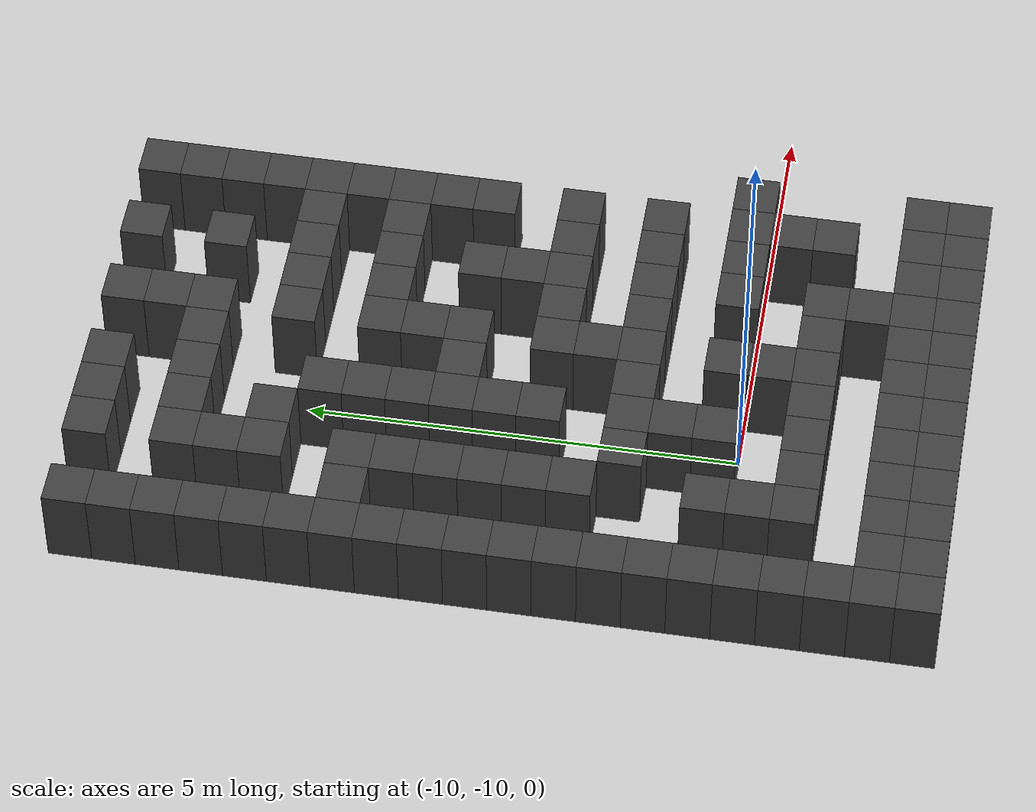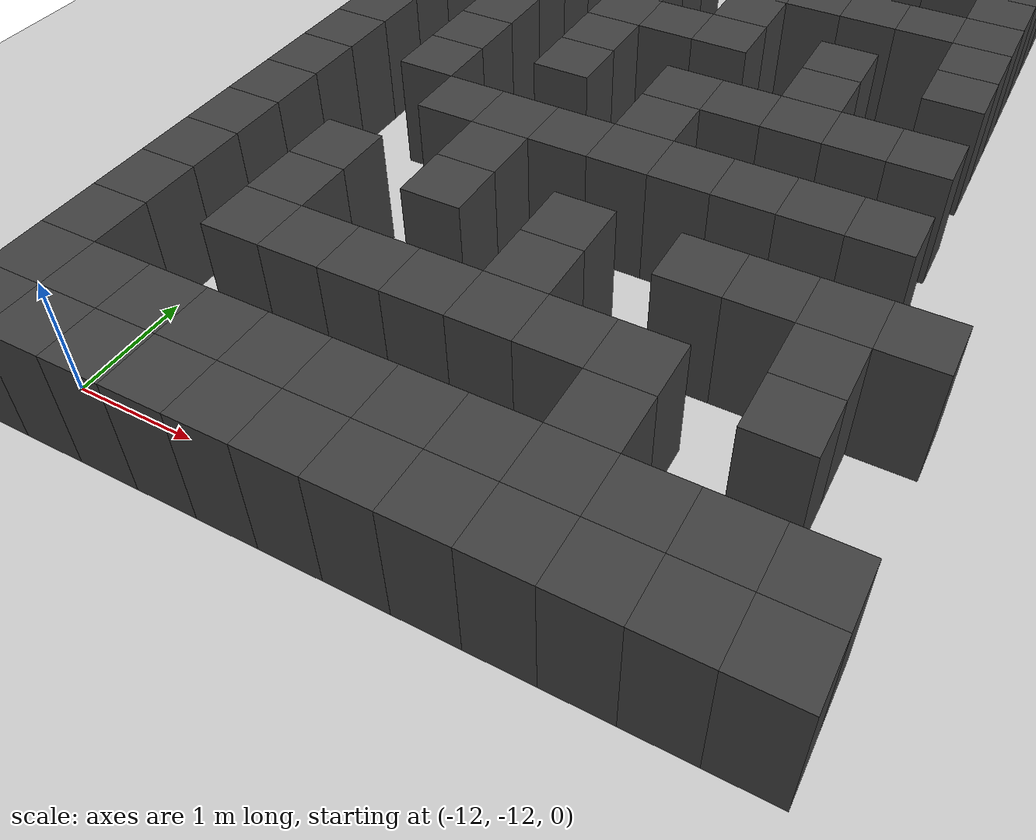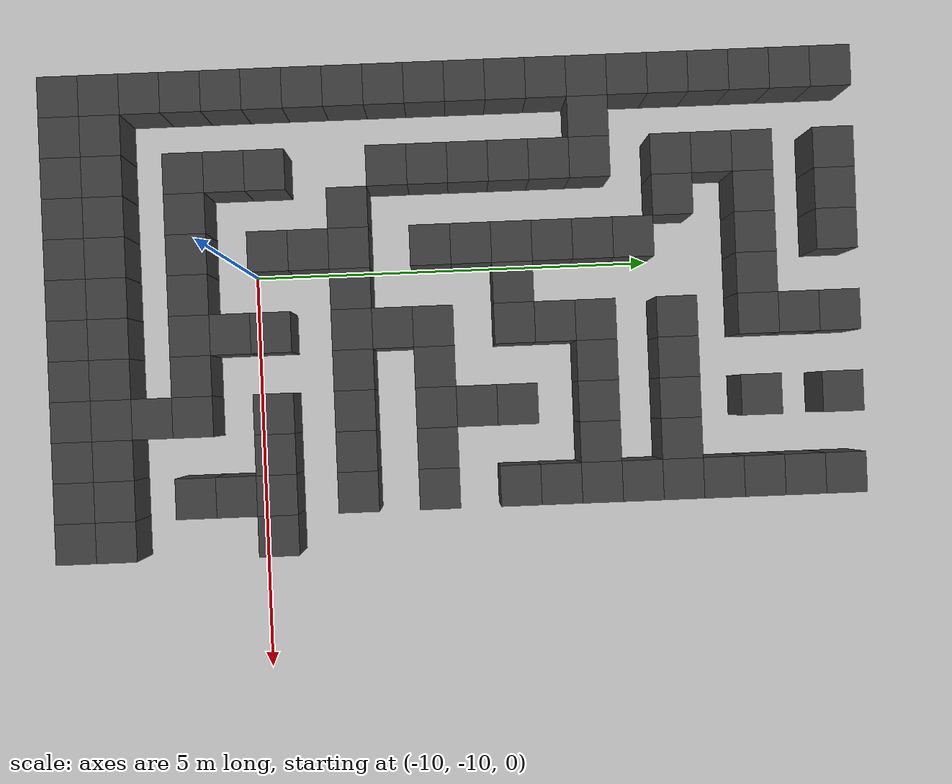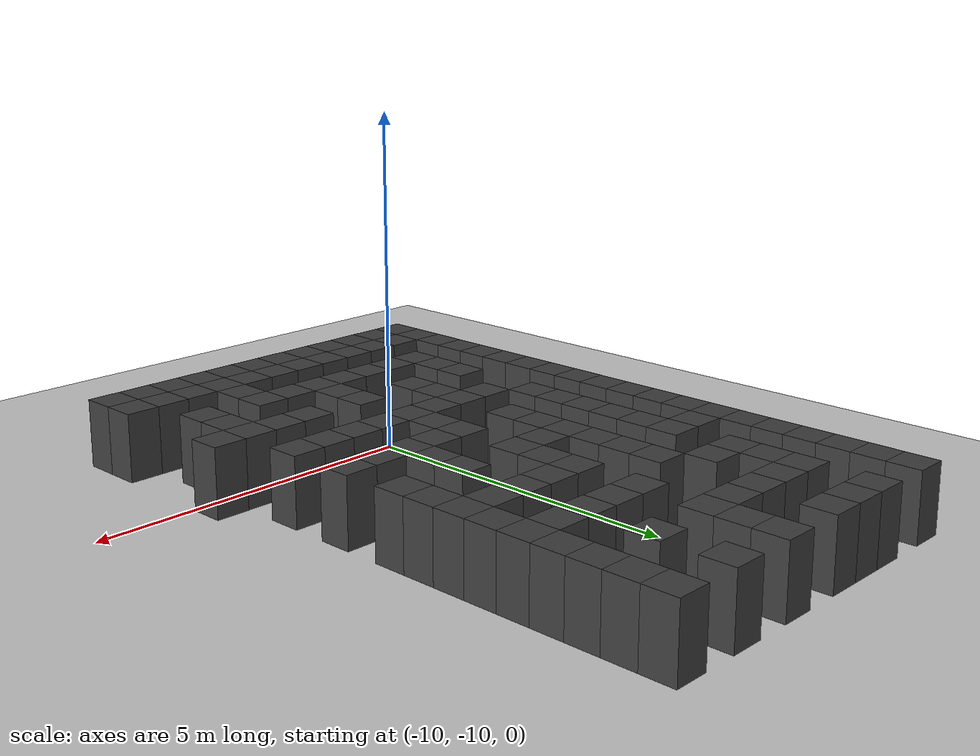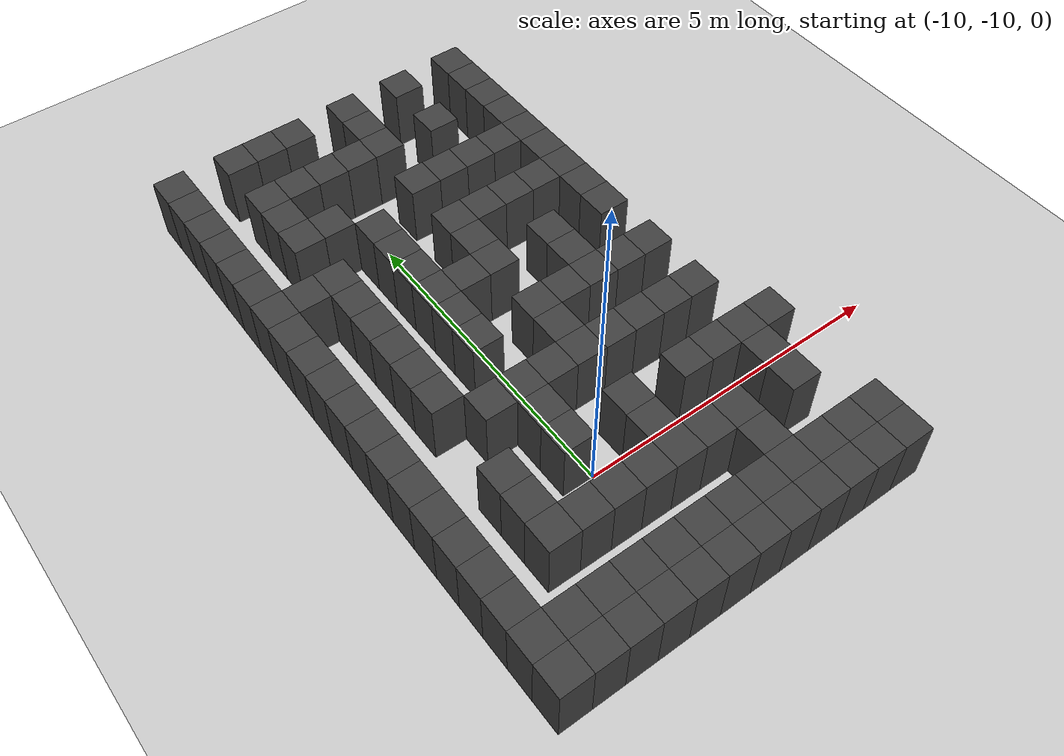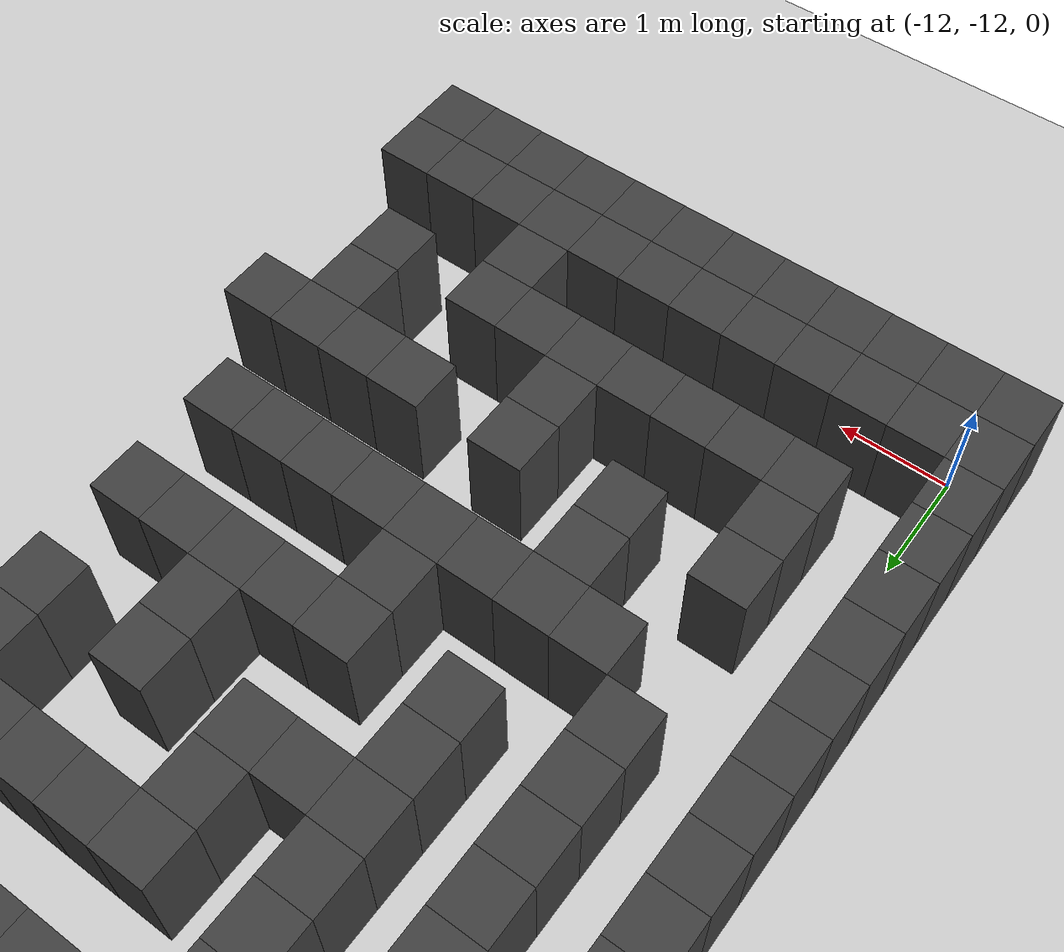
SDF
<sdf version="1.7">
 <world name="map_17508">
  <model name="ground_plane">
   <static>true</static>
   <link name="link">
    <collision name="collision">
     <geometry><plane><normal>0 0 1</normal><size>200 200</size></plane></geometry>
    </collision>
    <visual name="visual">
     <geometry><plane><normal>0 0 1</normal><size>200 200</size></plane></geometry>
     <material><ambient>0.8 0.8 0.8 1</ambient><diffuse>0.8 0.8 0.8 1</diffuse></material>
    </visual>
   </link>
  </model>
  <model name="maze_environment">
   <static>true</static>
   <link name="wall_737">
    <pose>-12.250 -2.750 0.500 0 0 0</pose>
    <collision name="col"><geometry><box><size>0.5 0.5 1.0</size></box></geometry></collision>
    <visual name="vis">
     <geometry><box><size>0.5 0.5 1.0</size></box></geometry>
     <material><ambient>0.15 0.15 0.15 1</ambient><diffuse>0.25 0.25 0.25 1</diffuse></material>
    </visual>
   </link>
   <link name="wall_738">
    <pose>-11.250 -2.750 0.500 0 0 0</pose>
    <collision name="col"><geometry><box><size>0.5 0.5 1.0</size></box></geometry></collision>
    <visual name="vis">
     <geometry><box><size>0.5 0.5 1.0</size></box></geometry>
     <material><ambient>0.15 0.15 0.15 1</ambient><diffuse>0.25 0.25 0.25 1</diffuse></material>
    </visual>
   </link>
   <link name="wall_739">
    <pose>-10.750 -2.750 0.500 0 0 0</pose>
    <collision name="col"><geometry><box><size>0.5 0.5 1.0</size></box></geometry></collision>
    <visual name="vis">
     <geometry><box><size>0.5 0.5 1.0</size></box></geometry>
     <material><ambient>0.15 0.15 0.15 1</ambient><diffuse>0.25 0.25 0.25 1</diffuse></material>
    </visual>
   </link>
   <link name="wall_740">
    <pose>-10.250 -2.750 0.500 0 0 0</pose>
    <collision name="col"><geometry><box><size>0.5 0.5 1.0</size></box></geometry></collision>
    <visual name="vis">
     <geometry><box><size>0.5 0.5 1.0</size></box></geometry>
     <material><ambient>0.15 0.15 0.15 1</ambient><diffuse>0.25 0.25 0.25 1</diffuse></material>
    </visual>
   </link>
   <link name="wall_741">
    <pose>-9.250 -2.750 0.500 0 0 0</pose>
    <collision name="col"><geometry><box><size>0.5 0.5 1.0</size></box></geometry></collision>
    <visual name="vis">
     <geometry><box><size>0.5 0.5 1.0</size></box></geometry>
     <material><ambient>0.15 0.15 0.15 1</ambient><diffuse>0.25 0.25 0.25 1</diffuse></material>
    </visual>
   </link>
   <link name="wall_742">
    <pose>-8.250 -2.750 0.500 0 0 0</pose>
    <collision name="col"><geometry><box><size>0.5 0.5 1.0</size></box></geometry></collision>
    <visual name="vis">
     <geometry><box><size>0.5 0.5 1.0</size></box></geometry>
     <material><ambient>0.15 0.15 0.15 1</ambient><diffuse>0.25 0.25 0.25 1</diffuse></material>
    </visual>
   </link>
   <link name="wall_743">
    <pose>-7.250 -2.750 0.500 0 0 0</pose>
    <collision name="col"><geometry><box><size>0.5 0.5 1.0</size></box></geometry></collision>
    <visual name="vis">
     <geometry><box><size>0.5 0.5 1.0</size></box></geometry>
     <material><ambient>0.15 0.15 0.15 1</ambient><diffuse>0.25 0.25 0.25 1</diffuse></material>
    </visual>
   </link>
   <link name="wall_773">
    <pose>-12.250 -3.250 0.500 0 0 0</pose>
    <collision name="col"><geometry><box><size>0.5 0.5 1.0</size></box></geometry></collision>
    <visual name="vis">
     <geometry><box><size>0.5 0.5 1.0</size></box></geometry>
     <material><ambient>0.15 0.15 0.15 1</ambient><diffuse>0.25 0.25 0.25 1</diffuse></material>
    </visual>
   </link>
   <link name="wall_774">
    <pose>-9.250 -3.250 0.500 0 0 0</pose>
    <collision name="col"><geometry><box><size>0.5 0.5 1.0</size></box></geometry></collision>
    <visual name="vis">
     <geometry><box><size>0.5 0.5 1.0</size></box></geometry>
     <material><ambient>0.15 0.15 0.15 1</ambient><diffuse>0.25 0.25 0.25 1</diffuse></material>
    </visual>
   </link>
   <link name="wall_775">
    <pose>-7.250 -3.250 0.500 0 0 0</pose>
    <collision name="col"><geometry><box><size>0.5 0.5 1.0</size></box></geometry></collision>
    <visual name="vis">
     <geometry><box><size>0.5 0.5 1.0</size></box></geometry>
     <material><ambient>0.15 0.15 0.15 1</ambient><diffuse>0.25 0.25 0.25 1</diffuse></material>
    </visual>
   </link>
   <link name="wall_785">
    <pose>-12.250 -3.750 0.500 0 0 0</pose>
    <collision name="col"><geometry><box><size>0.5 0.5 1.0</size></box></geometry></collision>
    <visual name="vis">
     <geometry><box><size>0.5 0.5 1.0</size></box></geometry>
     <material><ambient>0.15 0.15 0.15 1</ambient><diffuse>0.25 0.25 0.25 1</diffuse></material>
    </visual>
   </link>
   <link name="wall_786">
    <pose>-11.250 -3.750 0.500 0 0 0</pose>
    <collision name="col"><geometry><box><size>0.5 0.5 1.0</size></box></geometry></collision>
    <visual name="vis">
     <geometry><box><size>0.5 0.5 1.0</size></box></geometry>
     <material><ambient>0.15 0.15 0.15 1</ambient><diffuse>0.25 0.25 0.25 1</diffuse></material>
    </visual>
   </link>
   <link name="wall_787">
    <pose>-10.750 -3.750 0.500 0 0 0</pose>
    <collision name="col"><geometry><box><size>0.5 0.5 1.0</size></box></geometry></collision>
    <visual name="vis">
     <geometry><box><size>0.5 0.5 1.0</size></box></geometry>
     <material><ambient>0.15 0.15 0.15 1</ambient><diffuse>0.25 0.25 0.25 1</diffuse></material>
    </visual>
   </link>
   <link name="wall_788">
    <pose>-10.250 -3.750 0.500 0 0 0</pose>
    <collision name="col"><geometry><box><size>0.5 0.5 1.0</size></box></geometry></collision>
    <visual name="vis">
     <geometry><box><size>0.5 0.5 1.0</size></box></geometry>
     <material><ambient>0.15 0.15 0.15 1</ambient><diffuse>0.25 0.25 0.25 1</diffuse></material>
    </visual>
   </link>
   <link name="wall_789">
    <pose>-9.750 -3.750 0.500 0 0 0</pose>
    <collision name="col"><geometry><box><size>0.5 0.5 1.0</size></box></geometry></collision>
    <visual name="vis">
     <geometry><box><size>0.5 0.5 1.0</size></box></geometry>
     <material><ambient>0.15 0.15 0.15 1</ambient><diffuse>0.25 0.25 0.25 1</diffuse></material>
    </visual>
   </link>
   <link name="wall_790">
    <pose>-9.250 -3.750 0.500 0 0 0</pose>
    <collision name="col"><geometry><box><size>0.5 0.5 1.0</size></box></geometry></collision>
    <visual name="vis">
     <geometry><box><size>0.5 0.5 1.0</size></box></geometry>
     <material><ambient>0.15 0.15 0.15 1</ambient><diffuse>0.25 0.25 0.25 1</diffuse></material>
    </visual>
   </link>
   <link name="wall_791">
    <pose>-8.250 -3.750 0.500 0 0 0</pose>
    <collision name="col"><geometry><box><size>0.5 0.5 1.0</size></box></geometry></collision>
    <visual name="vis">
     <geometry><box><size>0.5 0.5 1.0</size></box></geometry>
     <material><ambient>0.15 0.15 0.15 1</ambient><diffuse>0.25 0.25 0.25 1</diffuse></material>
    </visual>
   </link>
   <link name="wall_792">
    <pose>-7.250 -3.750 0.500 0 0 0</pose>
    <collision name="col"><geometry><box><size>0.5 0.5 1.0</size></box></geometry></collision>
    <visual name="vis">
     <geometry><box><size>0.5 0.5 1.0</size></box></geometry>
     <material><ambient>0.15 0.15 0.15 1</ambient><diffuse>0.25 0.25 0.25 1</diffuse></material>
    </visual>
   </link>
   <link name="wall_817">
    <pose>-12.250 -4.250 0.500 0 0 0</pose>
    <collision name="col"><geometry><box><size>0.5 0.5 1.0</size></box></geometry></collision>
    <visual name="vis">
     <geometry><box><size>0.5 0.5 1.0</size></box></geometry>
     <material><ambient>0.15 0.15 0.15 1</ambient><diffuse>0.25 0.25 0.25 1</diffuse></material>
    </visual>
   </link>
   <link name="wall_818">
    <pose>-11.250 -4.250 0.500 0 0 0</pose>
    <collision name="col"><geometry><box><size>0.5 0.5 1.0</size></box></geometry></collision>
    <visual name="vis">
     <geometry><box><size>0.5 0.5 1.0</size></box></geometry>
     <material><ambient>0.15 0.15 0.15 1</ambient><diffuse>0.25 0.25 0.25 1</diffuse></material>
    </visual>
   </link>
   <link name="wall_819">
    <pose>-7.250 -4.250 0.500 0 0 0</pose>
    <collision name="col"><geometry><box><size>0.5 0.5 1.0</size></box></geometry></collision>
    <visual name="vis">
     <geometry><box><size>0.5 0.5 1.0</size></box></geometry>
     <material><ambient>0.15 0.15 0.15 1</ambient><diffuse>0.25 0.25 0.25 1</diffuse></material>
    </visual>
   </link>
   <link name="wall_833">
    <pose>-12.250 -4.750 0.500 0 0 0</pose>
    <collision name="col"><geometry><box><size>0.5 0.5 1.0</size></box></geometry></collision>
    <visual name="vis">
     <geometry><box><size>0.5 0.5 1.0</size></box></geometry>
     <material><ambient>0.15 0.15 0.15 1</ambient><diffuse>0.25 0.25 0.25 1</diffuse></material>
    </visual>
   </link>
   <link name="wall_834">
    <pose>-11.250 -4.750 0.500 0 0 0</pose>
    <collision name="col"><geometry><box><size>0.5 0.5 1.0</size></box></geometry></collision>
    <visual name="vis">
     <geometry><box><size>0.5 0.5 1.0</size></box></geometry>
     <material><ambient>0.15 0.15 0.15 1</ambient><diffuse>0.25 0.25 0.25 1</diffuse></material>
    </visual>
   </link>
   <link name="wall_835">
    <pose>-10.750 -4.750 0.500 0 0 0</pose>
    <collision name="col"><geometry><box><size>0.5 0.5 1.0</size></box></geometry></collision>
    <visual name="vis">
     <geometry><box><size>0.5 0.5 1.0</size></box></geometry>
     <material><ambient>0.15 0.15 0.15 1</ambient><diffuse>0.25 0.25 0.25 1</diffuse></material>
    </visual>
   </link>
   <link name="wall_836">
    <pose>-9.250 -4.750 0.500 0 0 0</pose>
    <collision name="col"><geometry><box><size>0.5 0.5 1.0</size></box></geometry></collision>
    <visual name="vis">
     <geometry><box><size>0.5 0.5 1.0</size></box></geometry>
     <material><ambient>0.15 0.15 0.15 1</ambient><diffuse>0.25 0.25 0.25 1</diffuse></material>
    </visual>
   </link>
   <link name="wall_837">
    <pose>-8.750 -4.750 0.500 0 0 0</pose>
    <collision name="col"><geometry><box><size>0.5 0.5 1.0</size></box></geometry></collision>
    <visual name="vis">
     <geometry><box><size>0.5 0.5 1.0</size></box></geometry>
     <material><ambient>0.15 0.15 0.15 1</ambient><diffuse>0.25 0.25 0.25 1</diffuse></material>
    </visual>
   </link>
   <link name="wall_838">
    <pose>-8.250 -4.750 0.500 0 0 0</pose>
    <collision name="col"><geometry><box><size>0.5 0.5 1.0</size></box></geometry></collision>
    <visual name="vis">
     <geometry><box><size>0.5 0.5 1.0</size></box></geometry>
     <material><ambient>0.15 0.15 0.15 1</ambient><diffuse>0.25 0.25 0.25 1</diffuse></material>
    </visual>
   </link>
   <link name="wall_839">
    <pose>-7.750 -4.750 0.500 0 0 0</pose>
    <collision name="col"><geometry><box><size>0.5 0.5 1.0</size></box></geometry></collision>
    <visual name="vis">
     <geometry><box><size>0.5 0.5 1.0</size></box></geometry>
     <material><ambient>0.15 0.15 0.15 1</ambient><diffuse>0.25 0.25 0.25 1</diffuse></material>
    </visual>
   </link>
   <link name="wall_840">
    <pose>-7.250 -4.750 0.500 0 0 0</pose>
    <collision name="col"><geometry><box><size>0.5 0.5 1.0</size></box></geometry></collision>
    <visual name="vis">
     <geometry><box><size>0.5 0.5 1.0</size></box></geometry>
     <material><ambient>0.15 0.15 0.15 1</ambient><diffuse>0.25 0.25 0.25 1</diffuse></material>
    </visual>
   </link>
   <link name="wall_868">
    <pose>-12.250 -5.250 0.500 0 0 0</pose>
    <collision name="col"><geometry><box><size>0.5 0.5 1.0</size></box></geometry></collision>
    <visual name="vis">
     <geometry><box><size>0.5 0.5 1.0</size></box></geometry>
     <material><ambient>0.15 0.15 0.15 1</ambient><diffuse>0.25 0.25 0.25 1</diffuse></material>
    </visual>
   </link>
   <link name="wall_869">
    <pose>-10.250 -5.250 0.500 0 0 0</pose>
    <collision name="col"><geometry><box><size>0.5 0.5 1.0</size></box></geometry></collision>
    <visual name="vis">
     <geometry><box><size>0.5 0.5 1.0</size></box></geometry>
     <material><ambient>0.15 0.15 0.15 1</ambient><diffuse>0.25 0.25 0.25 1</diffuse></material>
    </visual>
   </link>
   <link name="wall_870">
    <pose>-7.250 -5.250 0.500 0 0 0</pose>
    <collision name="col"><geometry><box><size>0.5 0.5 1.0</size></box></geometry></collision>
    <visual name="vis">
     <geometry><box><size>0.5 0.5 1.0</size></box></geometry>
     <material><ambient>0.15 0.15 0.15 1</ambient><diffuse>0.25 0.25 0.25 1</diffuse></material>
    </visual>
   </link>
   <link name="wall_884">
    <pose>-12.250 -5.750 0.500 0 0 0</pose>
    <collision name="col"><geometry><box><size>0.5 0.5 1.0</size></box></geometry></collision>
    <visual name="vis">
     <geometry><box><size>0.5 0.5 1.0</size></box></geometry>
     <material><ambient>0.15 0.15 0.15 1</ambient><diffuse>0.25 0.25 0.25 1</diffuse></material>
    </visual>
   </link>
   <link name="wall_885">
    <pose>-11.750 -5.750 0.500 0 0 0</pose>
    <collision name="col"><geometry><box><size>0.5 0.5 1.0</size></box></geometry></collision>
    <visual name="vis">
     <geometry><box><size>0.5 0.5 1.0</size></box></geometry>
     <material><ambient>0.15 0.15 0.15 1</ambient><diffuse>0.25 0.25 0.25 1</diffuse></material>
    </visual>
   </link>
   <link name="wall_886">
    <pose>-11.250 -5.750 0.500 0 0 0</pose>
    <collision name="col"><geometry><box><size>0.5 0.5 1.0</size></box></geometry></collision>
    <visual name="vis">
     <geometry><box><size>0.5 0.5 1.0</size></box></geometry>
     <material><ambient>0.15 0.15 0.15 1</ambient><diffuse>0.25 0.25 0.25 1</diffuse></material>
    </visual>
   </link>
   <link name="wall_887">
    <pose>-10.250 -5.750 0.500 0 0 0</pose>
    <collision name="col"><geometry><box><size>0.5 0.5 1.0</size></box></geometry></collision>
    <visual name="vis">
     <geometry><box><size>0.5 0.5 1.0</size></box></geometry>
     <material><ambient>0.15 0.15 0.15 1</ambient><diffuse>0.25 0.25 0.25 1</diffuse></material>
    </visual>
   </link>
   <link name="wall_888">
    <pose>-9.250 -5.750 0.500 0 0 0</pose>
    <collision name="col"><geometry><box><size>0.5 0.5 1.0</size></box></geometry></collision>
    <visual name="vis">
     <geometry><box><size>0.5 0.5 1.0</size></box></geometry>
     <material><ambient>0.15 0.15 0.15 1</ambient><diffuse>0.25 0.25 0.25 1</diffuse></material>
    </visual>
   </link>
   <link name="wall_889">
    <pose>-8.750 -5.750 0.500 0 0 0</pose>
    <collision name="col"><geometry><box><size>0.5 0.5 1.0</size></box></geometry></collision>
    <visual name="vis">
     <geometry><box><size>0.5 0.5 1.0</size></box></geometry>
     <material><ambient>0.15 0.15 0.15 1</ambient><diffuse>0.25 0.25 0.25 1</diffuse></material>
    </visual>
   </link>
   <link name="wall_890">
    <pose>-8.250 -5.750 0.500 0 0 0</pose>
    <collision name="col"><geometry><box><size>0.5 0.5 1.0</size></box></geometry></collision>
    <visual name="vis">
     <geometry><box><size>0.5 0.5 1.0</size></box></geometry>
     <material><ambient>0.15 0.15 0.15 1</ambient><diffuse>0.25 0.25 0.25 1</diffuse></material>
    </visual>
   </link>
   <link name="wall_891">
    <pose>-7.750 -5.750 0.500 0 0 0</pose>
    <collision name="col"><geometry><box><size>0.5 0.5 1.0</size></box></geometry></collision>
    <visual name="vis">
     <geometry><box><size>0.5 0.5 1.0</size></box></geometry>
     <material><ambient>0.15 0.15 0.15 1</ambient><diffuse>0.25 0.25 0.25 1</diffuse></material>
    </visual>
   </link>
   <link name="wall_892">
    <pose>-7.250 -5.750 0.500 0 0 0</pose>
    <collision name="col"><geometry><box><size>0.5 0.5 1.0</size></box></geometry></collision>
    <visual name="vis">
     <geometry><box><size>0.5 0.5 1.0</size></box></geometry>
     <material><ambient>0.15 0.15 0.15 1</ambient><diffuse>0.25 0.25 0.25 1</diffuse></material>
    </visual>
   </link>
   <link name="wall_916">
    <pose>-12.250 -6.250 0.500 0 0 0</pose>
    <collision name="col"><geometry><box><size>0.5 0.5 1.0</size></box></geometry></collision>
    <visual name="vis">
     <geometry><box><size>0.5 0.5 1.0</size></box></geometry>
     <material><ambient>0.15 0.15 0.15 1</ambient><diffuse>0.25 0.25 0.25 1</diffuse></material>
    </visual>
   </link>
   <link name="wall_917">
    <pose>-11.250 -6.250 0.500 0 0 0</pose>
    <collision name="col"><geometry><box><size>0.5 0.5 1.0</size></box></geometry></collision>
    <visual name="vis">
     <geometry><box><size>0.5 0.5 1.0</size></box></geometry>
     <material><ambient>0.15 0.15 0.15 1</ambient><diffuse>0.25 0.25 0.25 1</diffuse></material>
    </visual>
   </link>
   <link name="wall_918">
    <pose>-10.250 -6.250 0.500 0 0 0</pose>
    <collision name="col"><geometry><box><size>0.5 0.5 1.0</size></box></geometry></collision>
    <visual name="vis">
     <geometry><box><size>0.5 0.5 1.0</size></box></geometry>
     <material><ambient>0.15 0.15 0.15 1</ambient><diffuse>0.25 0.25 0.25 1</diffuse></material>
    </visual>
   </link>
   <link name="wall_919">
    <pose>-9.250 -6.250 0.500 0 0 0</pose>
    <collision name="col"><geometry><box><size>0.5 0.5 1.0</size></box></geometry></collision>
    <visual name="vis">
     <geometry><box><size>0.5 0.5 1.0</size></box></geometry>
     <material><ambient>0.15 0.15 0.15 1</ambient><diffuse>0.25 0.25 0.25 1</diffuse></material>
    </visual>
   </link>
   <link name="wall_920">
    <pose>-7.250 -6.250 0.500 0 0 0</pose>
    <collision name="col"><geometry><box><size>0.5 0.5 1.0</size></box></geometry></collision>
    <visual name="vis">
     <geometry><box><size>0.5 0.5 1.0</size></box></geometry>
     <material><ambient>0.15 0.15 0.15 1</ambient><diffuse>0.25 0.25 0.25 1</diffuse></material>
    </visual>
   </link>
   <link name="wall_932">
    <pose>-12.250 -6.750 0.500 0 0 0</pose>
    <collision name="col"><geometry><box><size>0.5 0.5 1.0</size></box></geometry></collision>
    <visual name="vis">
     <geometry><box><size>0.5 0.5 1.0</size></box></geometry>
     <material><ambient>0.15 0.15 0.15 1</ambient><diffuse>0.25 0.25 0.25 1</diffuse></material>
    </visual>
   </link>
   <link name="wall_933">
    <pose>-11.250 -6.750 0.500 0 0 0</pose>
    <collision name="col"><geometry><box><size>0.5 0.5 1.0</size></box></geometry></collision>
    <visual name="vis">
     <geometry><box><size>0.5 0.5 1.0</size></box></geometry>
     <material><ambient>0.15 0.15 0.15 1</ambient><diffuse>0.25 0.25 0.25 1</diffuse></material>
    </visual>
   </link>
   <link name="wall_934">
    <pose>-10.250 -6.750 0.500 0 0 0</pose>
    <collision name="col"><geometry><box><size>0.5 0.5 1.0</size></box></geometry></collision>
    <visual name="vis">
     <geometry><box><size>0.5 0.5 1.0</size></box></geometry>
     <material><ambient>0.15 0.15 0.15 1</ambient><diffuse>0.25 0.25 0.25 1</diffuse></material>
    </visual>
   </link>
   <link name="wall_935">
    <pose>-9.750 -6.750 0.500 0 0 0</pose>
    <collision name="col"><geometry><box><size>0.5 0.5 1.0</size></box></geometry></collision>
    <visual name="vis">
     <geometry><box><size>0.5 0.5 1.0</size></box></geometry>
     <material><ambient>0.15 0.15 0.15 1</ambient><diffuse>0.25 0.25 0.25 1</diffuse></material>
    </visual>
   </link>
   <link name="wall_936">
    <pose>-9.250 -6.750 0.500 0 0 0</pose>
    <collision name="col"><geometry><box><size>0.5 0.5 1.0</size></box></geometry></collision>
    <visual name="vis">
     <geometry><box><size>0.5 0.5 1.0</size></box></geometry>
     <material><ambient>0.15 0.15 0.15 1</ambient><diffuse>0.25 0.25 0.25 1</diffuse></material>
    </visual>
   </link>
   <link name="wall_937">
    <pose>-8.250 -6.750 0.500 0 0 0</pose>
    <collision name="col"><geometry><box><size>0.5 0.5 1.0</size></box></geometry></collision>
    <visual name="vis">
     <geometry><box><size>0.5 0.5 1.0</size></box></geometry>
     <material><ambient>0.15 0.15 0.15 1</ambient><diffuse>0.25 0.25 0.25 1</diffuse></material>
    </visual>
   </link>
   <link name="wall_938">
    <pose>-7.250 -6.750 0.500 0 0 0</pose>
    <collision name="col"><geometry><box><size>0.5 0.5 1.0</size></box></geometry></collision>
    <visual name="vis">
     <geometry><box><size>0.5 0.5 1.0</size></box></geometry>
     <material><ambient>0.15 0.15 0.15 1</ambient><diffuse>0.25 0.25 0.25 1</diffuse></material>
    </visual>
   </link>
   <link name="wall_966">
    <pose>-12.250 -7.250 0.500 0 0 0</pose>
    <collision name="col"><geometry><box><size>0.5 0.5 1.0</size></box></geometry></collision>
    <visual name="vis">
     <geometry><box><size>0.5 0.5 1.0</size></box></geometry>
     <material><ambient>0.15 0.15 0.15 1</ambient><diffuse>0.25 0.25 0.25 1</diffuse></material>
    </visual>
   </link>
   <link name="wall_967">
    <pose>-11.250 -7.250 0.500 0 0 0</pose>
    <collision name="col"><geometry><box><size>0.5 0.5 1.0</size></box></geometry></collision>
    <visual name="vis">
     <geometry><box><size>0.5 0.5 1.0</size></box></geometry>
     <material><ambient>0.15 0.15 0.15 1</ambient><diffuse>0.25 0.25 0.25 1</diffuse></material>
    </visual>
   </link>
   <link name="wall_968">
    <pose>-10.250 -7.250 0.500 0 0 0</pose>
    <collision name="col"><geometry><box><size>0.5 0.5 1.0</size></box></geometry></collision>
    <visual name="vis">
     <geometry><box><size>0.5 0.5 1.0</size></box></geometry>
     <material><ambient>0.15 0.15 0.15 1</ambient><diffuse>0.25 0.25 0.25 1</diffuse></material>
    </visual>
   </link>
   <link name="wall_969">
    <pose>-8.250 -7.250 0.500 0 0 0</pose>
    <collision name="col"><geometry><box><size>0.5 0.5 1.0</size></box></geometry></collision>
    <visual name="vis">
     <geometry><box><size>0.5 0.5 1.0</size></box></geometry>
     <material><ambient>0.15 0.15 0.15 1</ambient><diffuse>0.25 0.25 0.25 1</diffuse></material>
    </visual>
   </link>
   <link name="wall_981">
    <pose>-12.250 -7.750 0.500 0 0 0</pose>
    <collision name="col"><geometry><box><size>0.5 0.5 1.0</size></box></geometry></collision>
    <visual name="vis">
     <geometry><box><size>0.5 0.5 1.0</size></box></geometry>
     <material><ambient>0.15 0.15 0.15 1</ambient><diffuse>0.25 0.25 0.25 1</diffuse></material>
    </visual>
   </link>
   <link name="wall_982">
    <pose>-11.250 -7.750 0.500 0 0 0</pose>
    <collision name="col"><geometry><box><size>0.5 0.5 1.0</size></box></geometry></collision>
    <visual name="vis">
     <geometry><box><size>0.5 0.5 1.0</size></box></geometry>
     <material><ambient>0.15 0.15 0.15 1</ambient><diffuse>0.25 0.25 0.25 1</diffuse></material>
    </visual>
   </link>
   <link name="wall_983">
    <pose>-10.250 -7.750 0.500 0 0 0</pose>
    <collision name="col"><geometry><box><size>0.5 0.5 1.0</size></box></geometry></collision>
    <visual name="vis">
     <geometry><box><size>0.5 0.5 1.0</size></box></geometry>
     <material><ambient>0.15 0.15 0.15 1</ambient><diffuse>0.25 0.25 0.25 1</diffuse></material>
    </visual>
   </link>
   <link name="wall_984">
    <pose>-9.250 -7.750 0.500 0 0 0</pose>
    <collision name="col"><geometry><box><size>0.5 0.5 1.0</size></box></geometry></collision>
    <visual name="vis">
     <geometry><box><size>0.5 0.5 1.0</size></box></geometry>
     <material><ambient>0.15 0.15 0.15 1</ambient><diffuse>0.25 0.25 0.25 1</diffuse></material>
    </visual>
   </link>
   <link name="wall_985">
    <pose>-8.750 -7.750 0.500 0 0 0</pose>
    <collision name="col"><geometry><box><size>0.5 0.5 1.0</size></box></geometry></collision>
    <visual name="vis">
     <geometry><box><size>0.5 0.5 1.0</size></box></geometry>
     <material><ambient>0.15 0.15 0.15 1</ambient><diffuse>0.25 0.25 0.25 1</diffuse></material>
    </visual>
   </link>
   <link name="wall_986">
    <pose>-8.250 -7.750 0.500 0 0 0</pose>
    <collision name="col"><geometry><box><size>0.5 0.5 1.0</size></box></geometry></collision>
    <visual name="vis">
     <geometry><box><size>0.5 0.5 1.0</size></box></geometry>
     <material><ambient>0.15 0.15 0.15 1</ambient><diffuse>0.25 0.25 0.25 1</diffuse></material>
    </visual>
   </link>
   <link name="wall_987">
    <pose>-7.750 -7.750 0.500 0 0 0</pose>
    <collision name="col"><geometry><box><size>0.5 0.5 1.0</size></box></geometry></collision>
    <visual name="vis">
     <geometry><box><size>0.5 0.5 1.0</size></box></geometry>
     <material><ambient>0.15 0.15 0.15 1</ambient><diffuse>0.25 0.25 0.25 1</diffuse></material>
    </visual>
   </link>
   <link name="wall_988">
    <pose>-7.250 -7.750 0.500 0 0 0</pose>
    <collision name="col"><geometry><box><size>0.5 0.5 1.0</size></box></geometry></collision>
    <visual name="vis">
     <geometry><box><size>0.5 0.5 1.0</size></box></geometry>
     <material><ambient>0.15 0.15 0.15 1</ambient><diffuse>0.25 0.25 0.25 1</diffuse></material>
    </visual>
   </link>
   <link name="wall_1016">
    <pose>-12.250 -8.250 0.500 0 0 0</pose>
    <collision name="col"><geometry><box><size>0.5 0.5 1.0</size></box></geometry></collision>
    <visual name="vis">
     <geometry><box><size>0.5 0.5 1.0</size></box></geometry>
     <material><ambient>0.15 0.15 0.15 1</ambient><diffuse>0.25 0.25 0.25 1</diffuse></material>
    </visual>
   </link>
   <link name="wall_1017">
    <pose>-11.250 -8.250 0.500 0 0 0</pose>
    <collision name="col"><geometry><box><size>0.5 0.5 1.0</size></box></geometry></collision>
    <visual name="vis">
     <geometry><box><size>0.5 0.5 1.0</size></box></geometry>
     <material><ambient>0.15 0.15 0.15 1</ambient><diffuse>0.25 0.25 0.25 1</diffuse></material>
    </visual>
   </link>
   <link name="wall_1018">
    <pose>-9.250 -8.250 0.500 0 0 0</pose>
    <collision name="col"><geometry><box><size>0.5 0.5 1.0</size></box></geometry></collision>
    <visual name="vis">
     <geometry><box><size>0.5 0.5 1.0</size></box></geometry>
     <material><ambient>0.15 0.15 0.15 1</ambient><diffuse>0.25 0.25 0.25 1</diffuse></material>
    </visual>
   </link>
   <link name="wall_1030">
    <pose>-12.250 -8.750 0.500 0 0 0</pose>
    <collision name="col"><geometry><box><size>0.5 0.5 1.0</size></box></geometry></collision>
    <visual name="vis">
     <geometry><box><size>0.5 0.5 1.0</size></box></geometry>
     <material><ambient>0.15 0.15 0.15 1</ambient><diffuse>0.25 0.25 0.25 1</diffuse></material>
    </visual>
   </link>
   <link name="wall_1031">
    <pose>-10.750 -8.750 0.500 0 0 0</pose>
    <collision name="col"><geometry><box><size>0.5 0.5 1.0</size></box></geometry></collision>
    <visual name="vis">
     <geometry><box><size>0.5 0.5 1.0</size></box></geometry>
     <material><ambient>0.15 0.15 0.15 1</ambient><diffuse>0.25 0.25 0.25 1</diffuse></material>
    </visual>
   </link>
   <link name="wall_1032">
    <pose>-10.250 -8.750 0.500 0 0 0</pose>
    <collision name="col"><geometry><box><size>0.5 0.5 1.0</size></box></geometry></collision>
    <visual name="vis">
     <geometry><box><size>0.5 0.5 1.0</size></box></geometry>
     <material><ambient>0.15 0.15 0.15 1</ambient><diffuse>0.25 0.25 0.25 1</diffuse></material>
    </visual>
   </link>
   <link name="wall_1033">
    <pose>-9.750 -8.750 0.500 0 0 0</pose>
    <collision name="col"><geometry><box><size>0.5 0.5 1.0</size></box></geometry></collision>
    <visual name="vis">
     <geometry><box><size>0.5 0.5 1.0</size></box></geometry>
     <material><ambient>0.15 0.15 0.15 1</ambient><diffuse>0.25 0.25 0.25 1</diffuse></material>
    </visual>
   </link>
   <link name="wall_1034">
    <pose>-9.250 -8.750 0.500 0 0 0</pose>
    <collision name="col"><geometry><box><size>0.5 0.5 1.0</size></box></geometry></collision>
    <visual name="vis">
     <geometry><box><size>0.5 0.5 1.0</size></box></geometry>
     <material><ambient>0.15 0.15 0.15 1</ambient><diffuse>0.25 0.25 0.25 1</diffuse></material>
    </visual>
   </link>
   <link name="wall_1035">
    <pose>-8.750 -8.750 0.500 0 0 0</pose>
    <collision name="col"><geometry><box><size>0.5 0.5 1.0</size></box></geometry></collision>
    <visual name="vis">
     <geometry><box><size>0.5 0.5 1.0</size></box></geometry>
     <material><ambient>0.15 0.15 0.15 1</ambient><diffuse>0.25 0.25 0.25 1</diffuse></material>
    </visual>
   </link>
   <link name="wall_1036">
    <pose>-8.250 -8.750 0.500 0 0 0</pose>
    <collision name="col"><geometry><box><size>0.5 0.5 1.0</size></box></geometry></collision>
    <visual name="vis">
     <geometry><box><size>0.5 0.5 1.0</size></box></geometry>
     <material><ambient>0.15 0.15 0.15 1</ambient><diffuse>0.25 0.25 0.25 1</diffuse></material>
    </visual>
   </link>
   <link name="wall_1037">
    <pose>-7.750 -8.750 0.500 0 0 0</pose>
    <collision name="col"><geometry><box><size>0.5 0.5 1.0</size></box></geometry></collision>
    <visual name="vis">
     <geometry><box><size>0.5 0.5 1.0</size></box></geometry>
     <material><ambient>0.15 0.15 0.15 1</ambient><diffuse>0.25 0.25 0.25 1</diffuse></material>
    </visual>
   </link>
   <link name="wall_1038">
    <pose>-7.250 -8.750 0.500 0 0 0</pose>
    <collision name="col"><geometry><box><size>0.5 0.5 1.0</size></box></geometry></collision>
    <visual name="vis">
     <geometry><box><size>0.5 0.5 1.0</size></box></geometry>
     <material><ambient>0.15 0.15 0.15 1</ambient><diffuse>0.25 0.25 0.25 1</diffuse></material>
    </visual>
   </link>
   <link name="wall_1067">
    <pose>-12.250 -9.250 0.500 0 0 0</pose>
    <collision name="col"><geometry><box><size>0.5 0.5 1.0</size></box></geometry></collision>
    <visual name="vis">
     <geometry><box><size>0.5 0.5 1.0</size></box></geometry>
     <material><ambient>0.15 0.15 0.15 1</ambient><diffuse>0.25 0.25 0.25 1</diffuse></material>
    </visual>
   </link>
   <link name="wall_1068">
    <pose>-10.250 -9.250 0.500 0 0 0</pose>
    <collision name="col"><geometry><box><size>0.5 0.5 1.0</size></box></geometry></collision>
    <visual name="vis">
     <geometry><box><size>0.5 0.5 1.0</size></box></geometry>
     <material><ambient>0.15 0.15 0.15 1</ambient><diffuse>0.25 0.25 0.25 1</diffuse></material>
    </visual>
   </link>
   <link name="wall_1079">
    <pose>-12.250 -9.750 0.500 0 0 0</pose>
    <collision name="col"><geometry><box><size>0.5 0.5 1.0</size></box></geometry></collision>
    <visual name="vis">
     <geometry><box><size>0.5 0.5 1.0</size></box></geometry>
     <material><ambient>0.15 0.15 0.15 1</ambient><diffuse>0.25 0.25 0.25 1</diffuse></material>
    </visual>
   </link>
   <link name="wall_1080">
    <pose>-11.250 -9.750 0.500 0 0 0</pose>
    <collision name="col"><geometry><box><size>0.5 0.5 1.0</size></box></geometry></collision>
    <visual name="vis">
     <geometry><box><size>0.5 0.5 1.0</size></box></geometry>
     <material><ambient>0.15 0.15 0.15 1</ambient><diffuse>0.25 0.25 0.25 1</diffuse></material>
    </visual>
   </link>
   <link name="wall_1081">
    <pose>-10.250 -9.750 0.500 0 0 0</pose>
    <collision name="col"><geometry><box><size>0.5 0.5 1.0</size></box></geometry></collision>
    <visual name="vis">
     <geometry><box><size>0.5 0.5 1.0</size></box></geometry>
     <material><ambient>0.15 0.15 0.15 1</ambient><diffuse>0.25 0.25 0.25 1</diffuse></material>
    </visual>
   </link>
   <link name="wall_1082">
    <pose>-9.250 -9.750 0.500 0 0 0</pose>
    <collision name="col"><geometry><box><size>0.5 0.5 1.0</size></box></geometry></collision>
    <visual name="vis">
     <geometry><box><size>0.5 0.5 1.0</size></box></geometry>
     <material><ambient>0.15 0.15 0.15 1</ambient><diffuse>0.25 0.25 0.25 1</diffuse></material>
    </visual>
   </link>
   <link name="wall_1083">
    <pose>-8.250 -9.750 0.500 0 0 0</pose>
    <collision name="col"><geometry><box><size>0.5 0.5 1.0</size></box></geometry></collision>
    <visual name="vis">
     <geometry><box><size>0.5 0.5 1.0</size></box></geometry>
     <material><ambient>0.15 0.15 0.15 1</ambient><diffuse>0.25 0.25 0.25 1</diffuse></material>
    </visual>
   </link>
   <link name="wall_1084">
    <pose>-7.750 -9.750 0.500 0 0 0</pose>
    <collision name="col"><geometry><box><size>0.5 0.5 1.0</size></box></geometry></collision>
    <visual name="vis">
     <geometry><box><size>0.5 0.5 1.0</size></box></geometry>
     <material><ambient>0.15 0.15 0.15 1</ambient><diffuse>0.25 0.25 0.25 1</diffuse></material>
    </visual>
   </link>
   <link name="wall_1085">
    <pose>-7.250 -9.750 0.500 0 0 0</pose>
    <collision name="col"><geometry><box><size>0.5 0.5 1.0</size></box></geometry></collision>
    <visual name="vis">
     <geometry><box><size>0.5 0.5 1.0</size></box></geometry>
     <material><ambient>0.15 0.15 0.15 1</ambient><diffuse>0.25 0.25 0.25 1</diffuse></material>
    </visual>
   </link>
   <link name="wall_1086">
    <pose>-6.750 -9.750 0.500 0 0 0</pose>
    <collision name="col"><geometry><box><size>0.5 0.5 1.0</size></box></geometry></collision>
    <visual name="vis">
     <geometry><box><size>0.5 0.5 1.0</size></box></geometry>
     <material><ambient>0.15 0.15 0.15 1</ambient><diffuse>0.25 0.25 0.25 1</diffuse></material>
    </visual>
   </link>
   <link name="wall_1114">
    <pose>-12.250 -10.250 0.500 0 0 0</pose>
    <collision name="col"><geometry><box><size>0.5 0.5 1.0</size></box></geometry></collision>
    <visual name="vis">
     <geometry><box><size>0.5 0.5 1.0</size></box></geometry>
     <material><ambient>0.15 0.15 0.15 1</ambient><diffuse>0.25 0.25 0.25 1</diffuse></material>
    </visual>
   </link>
   <link name="wall_1115">
    <pose>-11.250 -10.250 0.500 0 0 0</pose>
    <collision name="col"><geometry><box><size>0.5 0.5 1.0</size></box></geometry></collision>
    <visual name="vis">
     <geometry><box><size>0.5 0.5 1.0</size></box></geometry>
     <material><ambient>0.15 0.15 0.15 1</ambient><diffuse>0.25 0.25 0.25 1</diffuse></material>
    </visual>
   </link>
   <link name="wall_1116">
    <pose>-9.250 -10.250 0.500 0 0 0</pose>
    <collision name="col"><geometry><box><size>0.5 0.5 1.0</size></box></geometry></collision>
    <visual name="vis">
     <geometry><box><size>0.5 0.5 1.0</size></box></geometry>
     <material><ambient>0.15 0.15 0.15 1</ambient><diffuse>0.25 0.25 0.25 1</diffuse></material>
    </visual>
   </link>
   <link name="wall_1117">
    <pose>-7.250 -10.250 0.500 0 0 0</pose>
    <collision name="col"><geometry><box><size>0.5 0.5 1.0</size></box></geometry></collision>
    <visual name="vis">
     <geometry><box><size>0.5 0.5 1.0</size></box></geometry>
     <material><ambient>0.15 0.15 0.15 1</ambient><diffuse>0.25 0.25 0.25 1</diffuse></material>
    </visual>
   </link>
   <link name="wall_1128">
    <pose>-12.250 -10.750 0.500 0 0 0</pose>
    <collision name="col"><geometry><box><size>0.5 0.5 1.0</size></box></geometry></collision>
    <visual name="vis">
     <geometry><box><size>0.5 0.5 1.0</size></box></geometry>
     <material><ambient>0.15 0.15 0.15 1</ambient><diffuse>0.25 0.25 0.25 1</diffuse></material>
    </visual>
   </link>
   <link name="wall_1129">
    <pose>-11.250 -10.750 0.500 0 0 0</pose>
    <collision name="col"><geometry><box><size>0.5 0.5 1.0</size></box></geometry></collision>
    <visual name="vis">
     <geometry><box><size>0.5 0.5 1.0</size></box></geometry>
     <material><ambient>0.15 0.15 0.15 1</ambient><diffuse>0.25 0.25 0.25 1</diffuse></material>
    </visual>
   </link>
   <link name="wall_1130">
    <pose>-10.750 -10.750 0.500 0 0 0</pose>
    <collision name="col"><geometry><box><size>0.5 0.5 1.0</size></box></geometry></collision>
    <visual name="vis">
     <geometry><box><size>0.5 0.5 1.0</size></box></geometry>
     <material><ambient>0.15 0.15 0.15 1</ambient><diffuse>0.25 0.25 0.25 1</diffuse></material>
    </visual>
   </link>
   <link name="wall_1131">
    <pose>-10.250 -10.750 0.500 0 0 0</pose>
    <collision name="col"><geometry><box><size>0.5 0.5 1.0</size></box></geometry></collision>
    <visual name="vis">
     <geometry><box><size>0.5 0.5 1.0</size></box></geometry>
     <material><ambient>0.15 0.15 0.15 1</ambient><diffuse>0.25 0.25 0.25 1</diffuse></material>
    </visual>
   </link>
   <link name="wall_1132">
    <pose>-9.750 -10.750 0.500 0 0 0</pose>
    <collision name="col"><geometry><box><size>0.5 0.5 1.0</size></box></geometry></collision>
    <visual name="vis">
     <geometry><box><size>0.5 0.5 1.0</size></box></geometry>
     <material><ambient>0.15 0.15 0.15 1</ambient><diffuse>0.25 0.25 0.25 1</diffuse></material>
    </visual>
   </link>
   <link name="wall_1133">
    <pose>-9.250 -10.750 0.500 0 0 0</pose>
    <collision name="col"><geometry><box><size>0.5 0.5 1.0</size></box></geometry></collision>
    <visual name="vis">
     <geometry><box><size>0.5 0.5 1.0</size></box></geometry>
     <material><ambient>0.15 0.15 0.15 1</ambient><diffuse>0.25 0.25 0.25 1</diffuse></material>
    </visual>
   </link>
   <link name="wall_1134">
    <pose>-8.750 -10.750 0.500 0 0 0</pose>
    <collision name="col"><geometry><box><size>0.5 0.5 1.0</size></box></geometry></collision>
    <visual name="vis">
     <geometry><box><size>0.5 0.5 1.0</size></box></geometry>
     <material><ambient>0.15 0.15 0.15 1</ambient><diffuse>0.25 0.25 0.25 1</diffuse></material>
    </visual>
   </link>
   <link name="wall_1135">
    <pose>-8.250 -10.750 0.500 0 0 0</pose>
    <collision name="col"><geometry><box><size>0.5 0.5 1.0</size></box></geometry></collision>
    <visual name="vis">
     <geometry><box><size>0.5 0.5 1.0</size></box></geometry>
     <material><ambient>0.15 0.15 0.15 1</ambient><diffuse>0.25 0.25 0.25 1</diffuse></material>
    </visual>
   </link>
   <link name="wall_1136">
    <pose>-7.250 -10.750 0.500 0 0 0</pose>
    <collision name="col"><geometry><box><size>0.5 0.5 1.0</size></box></geometry></collision>
    <visual name="vis">
     <geometry><box><size>0.5 0.5 1.0</size></box></geometry>
     <material><ambient>0.15 0.15 0.15 1</ambient><diffuse>0.25 0.25 0.25 1</diffuse></material>
    </visual>
   </link>
   <link name="wall_1165">
    <pose>-12.250 -11.250 0.500 0 0 0</pose>
    <collision name="col"><geometry><box><size>0.5 0.5 1.0</size></box></geometry></collision>
    <visual name="vis">
     <geometry><box><size>0.5 0.5 1.0</size></box></geometry>
     <material><ambient>0.15 0.15 0.15 1</ambient><diffuse>0.25 0.25 0.25 1</diffuse></material>
    </visual>
   </link>
   <link name="wall_1166">
    <pose>-8.250 -11.250 0.500 0 0 0</pose>
    <collision name="col"><geometry><box><size>0.5 0.5 1.0</size></box></geometry></collision>
    <visual name="vis">
     <geometry><box><size>0.5 0.5 1.0</size></box></geometry>
     <material><ambient>0.15 0.15 0.15 1</ambient><diffuse>0.25 0.25 0.25 1</diffuse></material>
    </visual>
   </link>
   <link name="wall_1172">
    <pose>-12.250 -11.750 0.500 0 0 0</pose>
    <collision name="col"><geometry><box><size>0.5 0.5 1.0</size></box></geometry></collision>
    <visual name="vis">
     <geometry><box><size>0.5 0.5 1.0</size></box></geometry>
     <material><ambient>0.15 0.15 0.15 1</ambient><diffuse>0.25 0.25 0.25 1</diffuse></material>
    </visual>
   </link>
   <link name="wall_1173">
    <pose>-11.750 -11.750 0.500 0 0 0</pose>
    <collision name="col"><geometry><box><size>0.5 0.5 1.0</size></box></geometry></collision>
    <visual name="vis">
     <geometry><box><size>0.5 0.5 1.0</size></box></geometry>
     <material><ambient>0.15 0.15 0.15 1</ambient><diffuse>0.25 0.25 0.25 1</diffuse></material>
    </visual>
   </link>
   <link name="wall_1174">
    <pose>-11.250 -11.750 0.500 0 0 0</pose>
    <collision name="col"><geometry><box><size>0.5 0.5 1.0</size></box></geometry></collision>
    <visual name="vis">
     <geometry><box><size>0.5 0.5 1.0</size></box></geometry>
     <material><ambient>0.15 0.15 0.15 1</ambient><diffuse>0.25 0.25 0.25 1</diffuse></material>
    </visual>
   </link>
   <link name="wall_1175">
    <pose>-10.750 -11.750 0.500 0 0 0</pose>
    <collision name="col"><geometry><box><size>0.5 0.5 1.0</size></box></geometry></collision>
    <visual name="vis">
     <geometry><box><size>0.5 0.5 1.0</size></box></geometry>
     <material><ambient>0.15 0.15 0.15 1</ambient><diffuse>0.25 0.25 0.25 1</diffuse></material>
    </visual>
   </link>
   <link name="wall_1176">
    <pose>-10.250 -11.750 0.500 0 0 0</pose>
    <collision name="col"><geometry><box><size>0.5 0.5 1.0</size></box></geometry></collision>
    <visual name="vis">
     <geometry><box><size>0.5 0.5 1.0</size></box></geometry>
     <material><ambient>0.15 0.15 0.15 1</ambient><diffuse>0.25 0.25 0.25 1</diffuse></material>
    </visual>
   </link>
   <link name="wall_1177">
    <pose>-9.750 -11.750 0.500 0 0 0</pose>
    <collision name="col"><geometry><box><size>0.5 0.5 1.0</size></box></geometry></collision>
    <visual name="vis">
     <geometry><box><size>0.5 0.5 1.0</size></box></geometry>
     <material><ambient>0.15 0.15 0.15 1</ambient><diffuse>0.25 0.25 0.25 1</diffuse></material>
    </visual>
   </link>
   <link name="wall_1178">
    <pose>-9.250 -11.750 0.500 0 0 0</pose>
    <collision name="col"><geometry><box><size>0.5 0.5 1.0</size></box></geometry></collision>
    <visual name="vis">
     <geometry><box><size>0.5 0.5 1.0</size></box></geometry>
     <material><ambient>0.15 0.15 0.15 1</ambient><diffuse>0.25 0.25 0.25 1</diffuse></material>
    </visual>
   </link>
   <link name="wall_1179">
    <pose>-8.750 -11.750 0.500 0 0 0</pose>
    <collision name="col"><geometry><box><size>0.5 0.5 1.0</size></box></geometry></collision>
    <visual name="vis">
     <geometry><box><size>0.5 0.5 1.0</size></box></geometry>
     <material><ambient>0.15 0.15 0.15 1</ambient><diffuse>0.25 0.25 0.25 1</diffuse></material>
    </visual>
   </link>
   <link name="wall_1180">
    <pose>-8.250 -11.750 0.500 0 0 0</pose>
    <collision name="col"><geometry><box><size>0.5 0.5 1.0</size></box></geometry></collision>
    <visual name="vis">
     <geometry><box><size>0.5 0.5 1.0</size></box></geometry>
     <material><ambient>0.15 0.15 0.15 1</ambient><diffuse>0.25 0.25 0.25 1</diffuse></material>
    </visual>
   </link>
   <link name="wall_1181">
    <pose>-7.750 -11.750 0.500 0 0 0</pose>
    <collision name="col"><geometry><box><size>0.5 0.5 1.0</size></box></geometry></collision>
    <visual name="vis">
     <geometry><box><size>0.5 0.5 1.0</size></box></geometry>
     <material><ambient>0.15 0.15 0.15 1</ambient><diffuse>0.25 0.25 0.25 1</diffuse></material>
    </visual>
   </link>
   <link name="wall_1182">
    <pose>-7.250 -11.750 0.500 0 0 0</pose>
    <collision name="col"><geometry><box><size>0.5 0.5 1.0</size></box></geometry></collision>
    <visual name="vis">
     <geometry><box><size>0.5 0.5 1.0</size></box></geometry>
     <material><ambient>0.15 0.15 0.15 1</ambient><diffuse>0.25 0.25 0.25 1</diffuse></material>
    </visual>
   </link>
   <link name="wall_1183">
    <pose>-6.750 -11.750 0.500 0 0 0</pose>
    <collision name="col"><geometry><box><size>0.5 0.5 1.0</size></box></geometry></collision>
    <visual name="vis">
     <geometry><box><size>0.5 0.5 1.0</size></box></geometry>
     <material><ambient>0.15 0.15 0.15 1</ambient><diffuse>0.25 0.25 0.25 1</diffuse></material>
    </visual>
   </link>
   <link name="wall_1220">
    <pose>-12.250 -12.250 0.500 0 0 0</pose>
    <collision name="col"><geometry><box><size>0.5 0.5 1.0</size></box></geometry></collision>
    <visual name="vis">
     <geometry><box><size>0.5 0.5 1.0</size></box></geometry>
     <material><ambient>0.15 0.15 0.15 1</ambient><diffuse>0.25 0.25 0.25 1</diffuse></material>
    </visual>
   </link>
   <link name="wall_1221">
    <pose>-11.750 -12.250 0.500 0 0 0</pose>
    <collision name="col"><geometry><box><size>0.5 0.5 1.0</size></box></geometry></collision>
    <visual name="vis">
     <geometry><box><size>0.5 0.5 1.0</size></box></geometry>
     <material><ambient>0.15 0.15 0.15 1</ambient><diffuse>0.25 0.25 0.25 1</diffuse></material>
    </visual>
   </link>
   <link name="wall_1222">
    <pose>-11.250 -12.250 0.500 0 0 0</pose>
    <collision name="col"><geometry><box><size>0.5 0.5 1.0</size></box></geometry></collision>
    <visual name="vis">
     <geometry><box><size>0.5 0.5 1.0</size></box></geometry>
     <material><ambient>0.15 0.15 0.15 1</ambient><diffuse>0.25 0.25 0.25 1</diffuse></material>
    </visual>
   </link>
   <link name="wall_1223">
    <pose>-10.750 -12.250 0.500 0 0 0</pose>
    <collision name="col"><geometry><box><size>0.5 0.5 1.0</size></box></geometry></collision>
    <visual name="vis">
     <geometry><box><size>0.5 0.5 1.0</size></box></geometry>
     <material><ambient>0.15 0.15 0.15 1</ambient><diffuse>0.25 0.25 0.25 1</diffuse></material>
    </visual>
   </link>
   <link name="wall_1224">
    <pose>-10.250 -12.250 0.500 0 0 0</pose>
    <collision name="col"><geometry><box><size>0.5 0.5 1.0</size></box></geometry></collision>
    <visual name="vis">
     <geometry><box><size>0.5 0.5 1.0</size></box></geometry>
     <material><ambient>0.15 0.15 0.15 1</ambient><diffuse>0.25 0.25 0.25 1</diffuse></material>
    </visual>
   </link>
   <link name="wall_1225">
    <pose>-9.750 -12.250 0.500 0 0 0</pose>
    <collision name="col"><geometry><box><size>0.5 0.5 1.0</size></box></geometry></collision>
    <visual name="vis">
     <geometry><box><size>0.5 0.5 1.0</size></box></geometry>
     <material><ambient>0.15 0.15 0.15 1</ambient><diffuse>0.25 0.25 0.25 1</diffuse></material>
    </visual>
   </link>
   <link name="wall_1226">
    <pose>-9.250 -12.250 0.500 0 0 0</pose>
    <collision name="col"><geometry><box><size>0.5 0.5 1.0</size></box></geometry></collision>
    <visual name="vis">
     <geometry><box><size>0.5 0.5 1.0</size></box></geometry>
     <material><ambient>0.15 0.15 0.15 1</ambient><diffuse>0.25 0.25 0.25 1</diffuse></material>
    </visual>
   </link>
   <link name="wall_1227">
    <pose>-8.750 -12.250 0.500 0 0 0</pose>
    <collision name="col"><geometry><box><size>0.5 0.5 1.0</size></box></geometry></collision>
    <visual name="vis">
     <geometry><box><size>0.5 0.5 1.0</size></box></geometry>
     <material><ambient>0.15 0.15 0.15 1</ambient><diffuse>0.25 0.25 0.25 1</diffuse></material>
    </visual>
   </link>
   <link name="wall_1228">
    <pose>-8.250 -12.250 0.500 0 0 0</pose>
    <collision name="col"><geometry><box><size>0.5 0.5 1.0</size></box></geometry></collision>
    <visual name="vis">
     <geometry><box><size>0.5 0.5 1.0</size></box></geometry>
     <material><ambient>0.15 0.15 0.15 1</ambient><diffuse>0.25 0.25 0.25 1</diffuse></material>
    </visual>
   </link>
   <link name="wall_1229">
    <pose>-7.750 -12.250 0.500 0 0 0</pose>
    <collision name="col"><geometry><box><size>0.5 0.5 1.0</size></box></geometry></collision>
    <visual name="vis">
     <geometry><box><size>0.5 0.5 1.0</size></box></geometry>
     <material><ambient>0.15 0.15 0.15 1</ambient><diffuse>0.25 0.25 0.25 1</diffuse></material>
    </visual>
   </link>
   <link name="wall_1230">
    <pose>-7.250 -12.250 0.500 0 0 0</pose>
    <collision name="col"><geometry><box><size>0.5 0.5 1.0</size></box></geometry></collision>
    <visual name="vis">
     <geometry><box><size>0.5 0.5 1.0</size></box></geometry>
     <material><ambient>0.15 0.15 0.15 1</ambient><diffuse>0.25 0.25 0.25 1</diffuse></material>
    </visual>
   </link>
   <link name="wall_1231">
    <pose>-6.750 -12.250 0.500 0 0 0</pose>
    <collision name="col"><geometry><box><size>0.5 0.5 1.0</size></box></geometry></collision>
    <visual name="vis">
     <geometry><box><size>0.5 0.5 1.0</size></box></geometry>
     <material><ambient>0.15 0.15 0.15 1</ambient><diffuse>0.25 0.25 0.25 1</diffuse></material>
    </visual>
   </link>
  </model>
 </world>
</sdf>
